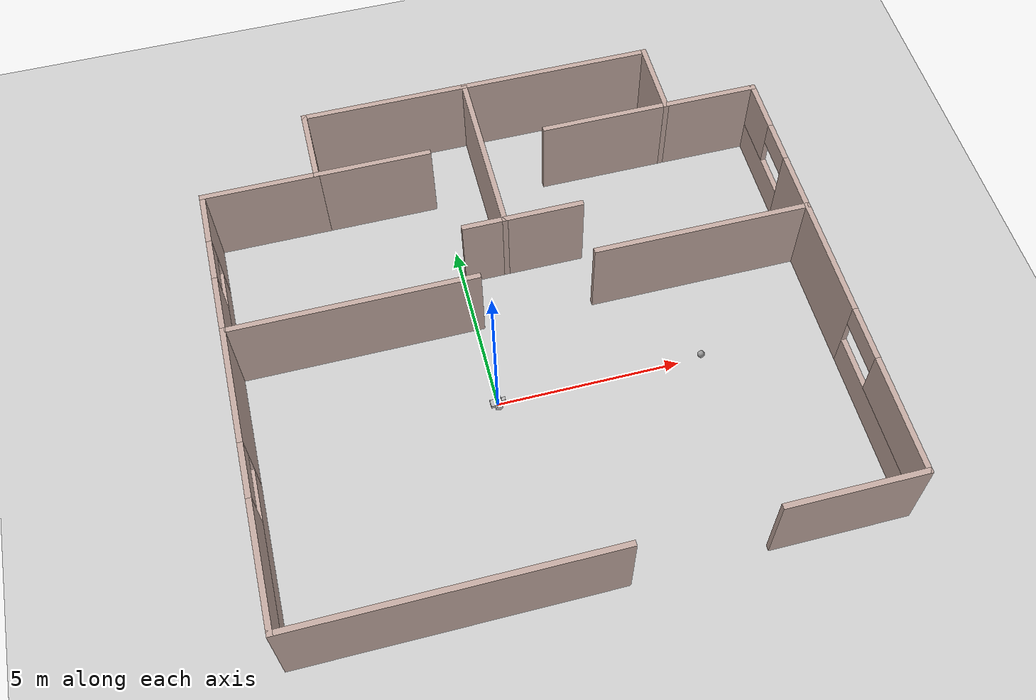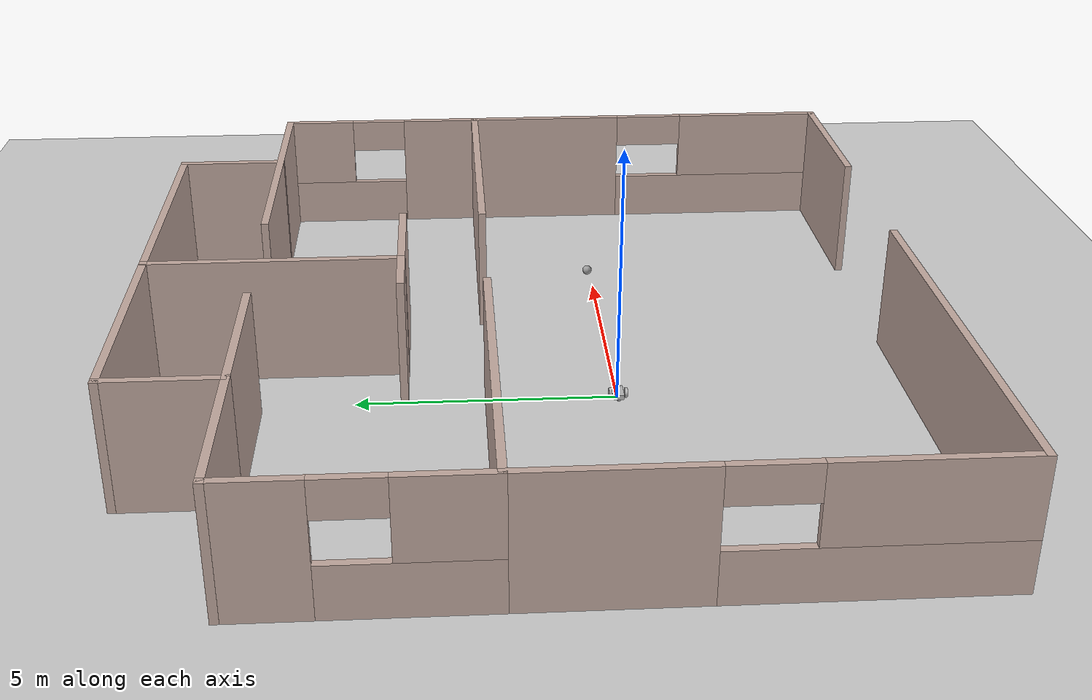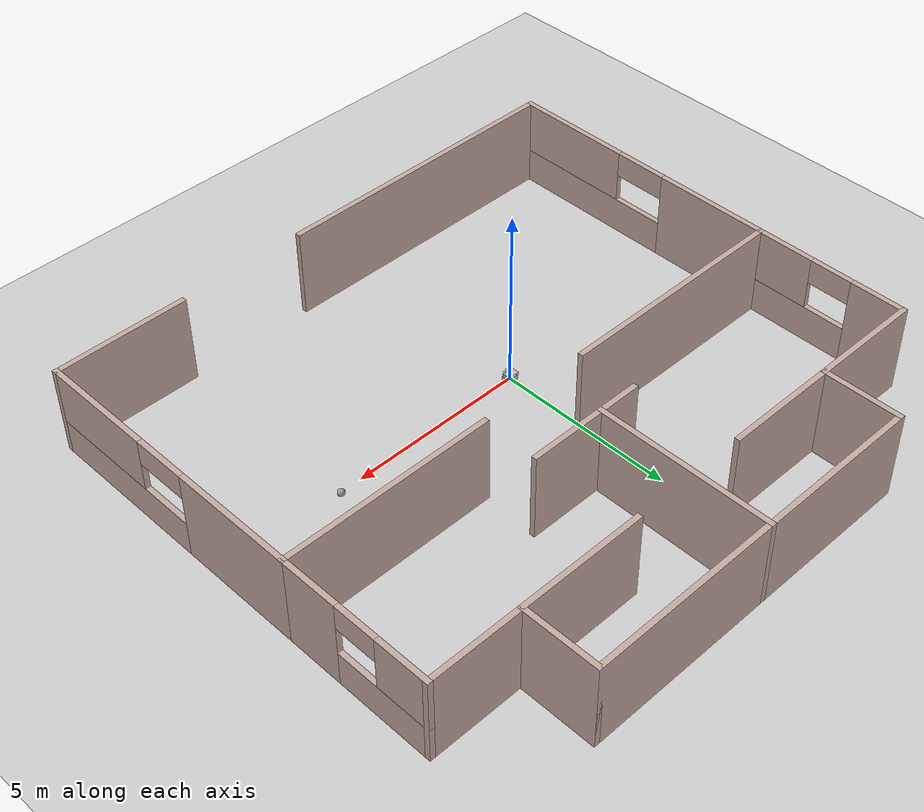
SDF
<sdf version="1.6">
 <world name="default">
  <light name="sun" type="directional">
   <pose>0 0 10 0 -0 0</pose>
   <diffuse>0.8 0.8 0.8 1</diffuse>
   <specular>0.2 0.2 0.2 1</specular>
   <attenuation>
    <range>1000</range>
    <constant>0.9</constant>
    <linear>0.01</linear>
    <quadratic>0.001</quadratic>
   </attenuation>
   <direction>-0.5 0.1 -0.9</direction>
  </light>
  <model name="ground_plane">
   <static>1</static>
   <link name="link">
    <collision name="collision">
     <geometry><plane><normal>0 0 1</normal><size>100 100</size></plane></geometry>
     <surface>
      <contact><collide_bitmask>65535</collide_bitmask></contact>
      <friction><ode><mu>100</mu><mu2>50</mu2></ode></friction>
     </surface>
    </collision>
    <visual name="visual">
     <cast_shadows>0</cast_shadows>
     <geometry><plane><normal>0 0 1</normal><size>100 100</size></plane></geometry>
     <material>
      <script><uri>file://media/materials/scripts/gazebo.material</uri><name>Gazebo/Grey</name></script>
     </material>
    </visual>
   </link>
  </model>
  <gravity>0 0 -9.8</gravity>
  <magnetic_field>6e-06 2.3e-05 -4.2e-05</magnetic_field>
  <atmosphere type="adiabatic"/>
  <physics name="default_physics" default="0" type="ode">
   <max_step_size>0.001</max_step_size>
   <real_time_factor>1</real_time_factor>
   <real_time_update_rate>1000</real_time_update_rate>
  </physics>
  <scene><ambient>0.4 0.4 0.4 1</ambient><background>0.7 0.7 0.7 1</background><shadows>1</shadows></scene>
  <spherical_coordinates>
   <surface_model>EARTH_WGS84</surface_model>
   <latitude_deg>0</latitude_deg>
   <longitude_deg>0</longitude_deg>
   <elevation>0</elevation>
   <heading_deg>0</heading_deg>
  </spherical_coordinates>
  <model name="building">
   <pose>1.35926 1.63717 0 0 -0 0</pose>
   <link name="Wall_22">
    <collision name="Wall_22_Collision">
     <geometry><box><size>5 0.15 2.5</size></box></geometry>
     <pose>0 0 1.25 0 -0 0</pose>
    </collision>
    <visual name="Wall_22_Visual">
     <pose>0 0 1.25 0 -0 0</pose>
     <geometry><box><size>5 0.15 2.5</size></box></geometry>
     <material>
      <script><uri>file://media/materials/scripts/gazebo.material</uri><name>Gazebo/Grey</name></script>
      <ambient>0.760784 0.662745 0.627451 1</ambient>
     </material>
     <meta><layer>0</layer></meta>
    </visual>
    <pose>-0.124998 4.85011 0 0 -0 1.57074</pose>
   </link>
   <link name="Wall_50">
    <collision name="Wall_50_Collision">
     <geometry><box><size>4.75 0.15 2.5</size></box></geometry>
     <pose>0 0 1.25 0 -0 0</pose>
    </collision>
    <visual name="Wall_50_Visual">
     <pose>0 0 1.25 0 -0 0</pose>
     <geometry><box><size>4.75 0.15 2.5</size></box></geometry>
     <material>
      <script><uri>file://media/materials/scripts/gazebo.material</uri><name>Gazebo/Grey</name></script>
      <ambient>0.760784 0.662745 0.627451 1</ambient>
     </material>
     <meta><layer>0</layer></meta>
    </visual>
    <pose>-2.42486 7.27489 0 0 -0 3.14159</pose>
   </link>
   <link name="Wall_51">
    <collision name="Wall_51_Collision">
     <geometry><box><size>2.25 0.15 2.5</size></box></geometry>
     <pose>0 0 1.25 0 -0 0</pose>
    </collision>
    <visual name="Wall_51_Visual">
     <pose>0 0 1.25 0 -0 0</pose>
     <geometry><box><size>2.25 0.15 2.5</size></box></geometry>
     <material>
      <script><uri>file://media/materials/scripts/gazebo.material</uri><name>Gazebo/Grey</name></script>
      <ambient>0.760784 0.662745 0.627451 1</ambient>
     </material>
     <meta><layer>0</layer></meta>
    </visual>
    <pose>-4.72486 6.22489 0 0 0 -1.5708</pose>
   </link>
   <link name="Wall_54">
    <collision name="Wall_54_Collision">
     <geometry><box><size>3.25 0.15 2.5</size></box></geometry>
     <pose>0 0 1.25 0 -0 0</pose>
    </collision>
    <visual name="Wall_54_Visual">
     <pose>0 0 1.25 0 -0 0</pose>
     <geometry><box><size>3.25 0.15 2.5</size></box></geometry>
     <material>
      <script><uri>file://media/materials/scripts/gazebo.material</uri><name>Gazebo/Grey</name></script>
      <ambient>0.760784 0.662745 0.627451 1</ambient>
     </material>
     <meta><layer>0</layer></meta>
    </visual>
    <pose>-6.27486 5.17489 0 0 -0 3.14159</pose>
   </link>
   <link name="Wall_55">
    <pose>-7.82486 2.99989 0 0 0 -1.5708</pose>
    <visual name="Wall_55_Visual_0">
     <pose>-1.4601 0 1.25 0 -0 0</pose>
     <geometry><box><size>1.5798 0.15 2.5</size></box></geometry>
     <material>
      <script><uri>file://media/materials/scripts/gazebo.material</uri><name>Gazebo/Grey</name></script>
      <ambient>0.760784 0.662745 0.627451 1</ambient>
     </material>
     <meta><layer>0</layer></meta>
    </visual>
    <collision name="Wall_55_Collision_0">
     <geometry><box><size>1.5798 0.15 2.5</size></box></geometry>
     <pose>-1.4601 0 1.25 0 -0 0</pose>
    </collision>
    <visual name="Wall_55_Visual_1">
     <pose>0.789898 0 0.5 0 -0 0</pose>
     <geometry><box><size>2.9202 0.15 1</size></box></geometry>
     <material>
      <script><uri>file://media/materials/scripts/gazebo.material</uri><name>Gazebo/Grey</name></script>
      <ambient>0.760784 0.662745 0.627451 1</ambient>
     </material>
     <meta><layer>0</layer></meta>
    </visual>
    <collision name="Wall_55_Collision_1">
     <geometry><box><size>2.9202 0.15 1</size></box></geometry>
     <pose>0.789898 0 0.5 0 -0 0</pose>
    </collision>
    <visual name="Wall_55_Visual_2">
     <pose>1.3899 0 1.75 0 -0 0</pose>
     <geometry><box><size>1.7202 0.15 1.5</size></box></geometry>
     <material>
      <script><uri>file://media/materials/scripts/gazebo.material</uri><name>Gazebo/Grey</name></script>
      <ambient>0.760784 0.662745 0.627451 1</ambient>
     </material>
     <meta><layer>0</layer></meta>
    </visual>
    <collision name="Wall_55_Collision_2">
     <geometry><box><size>1.7202 0.15 1.5</size></box></geometry>
     <pose>1.3899 0 1.75 0 -0 0</pose>
    </collision>
    <visual name="Wall_55_Visual_3">
     <pose>-0.070203 0 2.15 0 -0 0</pose>
     <geometry><box><size>1.2 0.15 0.7</size></box></geometry>
     <material>
      <script><uri>file://media/materials/scripts/gazebo.material</uri><name>Gazebo/Grey</name></script>
      <ambient>0.760784 0.662745 0.627451 1</ambient>
     </material>
     <meta><layer>0</layer></meta>
    </visual>
    <collision name="Wall_55_Collision_3">
     <geometry><box><size>1.2 0.15 0.7</size></box></geometry>
     <pose>-0.070203 0 2.15 0 -0 0</pose>
    </collision>
   </link>
   <link name="Wall_58">
    <collision name="Wall_58_Collision">
     <geometry><box><size>3.25 0.15 2.5</size></box></geometry>
     <pose>0 0 1.25 0 -0 0</pose>
    </collision>
    <visual name="Wall_58_Visual">
     <pose>0 0 1.25 0 -0 0</pose>
     <geometry><box><size>3.25 0.15 2.5</size></box></geometry>
     <material>
      <script><uri>file://media/materials/scripts/gazebo.material</uri><name>Gazebo/Grey</name></script>
      <ambient>0.760784 0.662745 0.627451 1</ambient>
     </material>
     <meta><layer>0</layer></meta>
    </visual>
    <pose>-3.17486 5.17489 0 0 -0 0</pose>
   </link>
   <link name="Wall_61">
    <collision name="Wall_61_Collision">
     <geometry><box><size>1.25 0.15 2.5</size></box></geometry>
     <pose>0 0 1.25 0 -0 0</pose>
    </collision>
    <visual name="Wall_61_Visual">
     <pose>0 0 1.25 0 -0 0</pose>
     <geometry><box><size>1.25 0.15 2.5</size></box></geometry>
     <material>
      <script><uri>file://media/materials/scripts/gazebo.material</uri><name>Gazebo/Grey</name></script>
      <ambient>0.760784 0.662745 0.627451 1</ambient>
     </material>
     <meta><layer>0</layer></meta>
    </visual>
    <pose>-0.675135 2.42533 0 0 -0 3.14159</pose>
   </link>
   <link name="Wall_68">
    <collision name="Wall_68_Collision">
     <geometry><box><size>6.74972 0.15 2.5</size></box></geometry>
     <pose>0 0 1.25 0 -0 0</pose>
    </collision>
    <visual name="Wall_68_Visual">
     <pose>0 0 1.25 0 -0 0</pose>
     <geometry><box><size>6.74972 0.15 2.5</size></box></geometry>
     <material>
      <script><uri>file://media/materials/scripts/gazebo.material</uri><name>Gazebo/Grey</name></script>
      <ambient>0.760784 0.662745 0.627451 1</ambient>
     </material>
     <meta><layer>0</layer></meta>
    </visual>
    <pose>-4.525 0.825108 0 0 -0 6.7e-05</pose>
   </link>
   <link name="Wall_70">
    <collision name="Wall_70_Collision">
     <geometry><box><size>2.25 0.15 2.5</size></box></geometry>
     <pose>0 0 1.25 0 -0 0</pose>
    </collision>
    <visual name="Wall_70_Visual">
     <pose>0 0 1.25 0 -0 0</pose>
     <geometry><box><size>2.25 0.15 2.5</size></box></geometry>
     <material>
      <script><uri>file://media/materials/scripts/gazebo.material</uri><name>Gazebo/Grey</name></script>
      <ambient>0.760784 0.662745 0.627451 1</ambient>
     </material>
     <meta><layer>0</layer></meta>
    </visual>
    <pose>0.924865 2.42533 0 0 -0 0</pose>
   </link>
   <link name="Wall_72">
    <collision name="Wall_72_Collision">
     <geometry><box><size>6 0.15 2.5</size></box></geometry>
     <pose>0 0 1.25 0 -0 0</pose>
    </collision>
    <visual name="Wall_72_Visual">
     <pose>0 0 1.25 0 -0 0</pose>
     <geometry><box><size>6 0.15 2.5</size></box></geometry>
     <material>
      <script><uri>file://media/materials/scripts/gazebo.material</uri><name>Gazebo/Grey</name></script>
      <ambient>0.760784 0.662745 0.627451 1</ambient>
     </material>
     <meta><layer>0</layer></meta>
    </visual>
    <pose>4.89986 0.825328 0 0 -0 0</pose>
   </link>
   <link name="Wall_73">
    <pose>7.82486 3.00033 0 0 -0 1.5708</pose>
    <visual name="Wall_73_Visual_0">
     <pose>-1.37508 0 1.25 0 -0 0</pose>
     <geometry><box><size>1.74984 0.15 2.5</size></box></geometry>
     <material>
      <script><uri>file://media/materials/scripts/gazebo.material</uri><name>Gazebo/Grey</name></script>
      <ambient>0.760784 0.662745 0.627451 1</ambient>
     </material>
     <meta><layer>0</layer></meta>
    </visual>
    <collision name="Wall_73_Collision_0">
     <geometry><box><size>1.74984 0.15 2.5</size></box></geometry>
     <pose>-1.37508 0 1.25 0 -0 0</pose>
    </collision>
    <visual name="Wall_73_Visual_1">
     <pose>0.874919 0 0.5 0 -0 0</pose>
     <geometry><box><size>2.75016 0.15 1</size></box></geometry>
     <material>
      <script><uri>file://media/materials/scripts/gazebo.material</uri><name>Gazebo/Grey</name></script>
      <ambient>0.760784 0.662745 0.627451 1</ambient>
     </material>
     <meta><layer>0</layer></meta>
    </visual>
    <collision name="Wall_73_Collision_1">
     <geometry><box><size>2.75016 0.15 1</size></box></geometry>
     <pose>0.874919 0 0.5 0 -0 0</pose>
    </collision>
    <visual name="Wall_73_Visual_2">
     <pose>1.47492 0 1.75 0 -0 0</pose>
     <geometry><box><size>1.55016 0.15 1.5</size></box></geometry>
     <material>
      <script><uri>file://media/materials/scripts/gazebo.material</uri><name>Gazebo/Grey</name></script>
      <ambient>0.760784 0.662745 0.627451 1</ambient>
     </material>
     <meta><layer>0</layer></meta>
    </visual>
    <collision name="Wall_73_Collision_2">
     <geometry><box><size>1.55016 0.15 1.5</size></box></geometry>
     <pose>1.47492 0 1.75 0 -0 0</pose>
    </collision>
    <visual name="Wall_73_Visual_3">
     <pose>0.099837 0 2.15 0 -0 0</pose>
     <geometry><box><size>1.2 0.15 0.7</size></box></geometry>
     <material>
      <script><uri>file://media/materials/scripts/gazebo.material</uri><name>Gazebo/Grey</name></script>
      <ambient>0.760784 0.662745 0.627451 1</ambient>
     </material>
     <meta><layer>0</layer></meta>
    </visual>
    <collision name="Wall_73_Collision_3">
     <geometry><box><size>1.2 0.15 0.7</size></box></geometry>
     <pose>0.099837 0 2.15 0 -0 0</pose>
    </collision>
   </link>
   <link name="Wall_74">
    <collision name="Wall_74_Collision">
     <geometry><box><size>6.25 0.15 2.5</size></box></geometry>
     <pose>0 0 1.25 0 -0 0</pose>
    </collision>
    <visual name="Wall_74_Visual">
     <pose>0 0 1.25 0 -0 0</pose>
     <geometry><box><size>6.25 0.15 2.5</size></box></geometry>
     <material>
      <script><uri>file://media/materials/scripts/gazebo.material</uri><name>Gazebo/Grey</name></script>
      <ambient>0.760784 0.662745 0.627451 1</ambient>
     </material>
     <meta><layer>0</layer></meta>
    </visual>
    <pose>4.77486 5.17533 0 0 -0 3.14159</pose>
   </link>
   <link name="Wall_78">
    <collision name="Wall_78_Collision">
     <geometry><box><size>5.5 0.15 2.5</size></box></geometry>
     <pose>0 0 1.25 0 -0 0</pose>
    </collision>
    <visual name="Wall_78_Visual">
     <pose>0 0 1.25 0 -0 0</pose>
     <geometry><box><size>5.5 0.15 2.5</size></box></geometry>
     <material>
      <script><uri>file://media/materials/scripts/gazebo.material</uri><name>Gazebo/Grey</name></script>
      <ambient>0.760784 0.662745 0.627451 1</ambient>
     </material>
     <meta><layer>0</layer></meta>
    </visual>
    <pose>2.55014 7.27489 0 0 -0 0</pose>
   </link>
   <link name="Wall_79">
    <collision name="Wall_79_Collision">
     <geometry><box><size>2.25 0.15 2.5</size></box></geometry>
     <pose>0 0 1.25 0 -0 0</pose>
    </collision>
    <visual name="Wall_79_Visual">
     <pose>0 0 1.25 0 -0 0</pose>
     <geometry><box><size>2.25 0.15 2.5</size></box></geometry>
     <material>
      <script><uri>file://media/materials/scripts/gazebo.material</uri><name>Gazebo/Grey</name></script>
      <ambient>0.760784 0.662745 0.627451 1</ambient>
     </material>
     <meta><layer>0</layer></meta>
    </visual>
    <pose>5.22514 6.22489 0 0 0 -1.5708</pose>
   </link>
   <link name="Wall_81">
    <pose>-7.82486 -3.22511 0 0 0 -1.5708</pose>
    <visual name="Wall_81_Visual_0">
     <pose>-2.46275 0 1.25 0 -0 0</pose>
     <geometry><box><size>3.32451 0.15 2.5</size></box></geometry>
     <material>
      <script><uri>file://media/materials/scripts/gazebo.material</uri><name>Gazebo/Grey</name></script>
      <ambient>0.760784 0.662745 0.627451 1</ambient>
     </material>
     <meta><layer>0</layer></meta>
    </visual>
    <collision name="Wall_81_Collision_0">
     <geometry><box><size>3.32451 0.15 2.5</size></box></geometry>
     <pose>-2.46275 0 1.25 0 -0 0</pose>
    </collision>
    <visual name="Wall_81_Visual_1">
     <pose>1.66225 0 0.5 0 -0 0</pose>
     <geometry><box><size>4.92549 0.15 1</size></box></geometry>
     <material>
      <script><uri>file://media/materials/scripts/gazebo.material</uri><name>Gazebo/Grey</name></script>
      <ambient>0.760784 0.662745 0.627451 1</ambient>
     </material>
     <meta><layer>0</layer></meta>
    </visual>
    <collision name="Wall_81_Collision_1">
     <geometry><box><size>4.92549 0.15 1</size></box></geometry>
     <pose>1.66225 0 0.5 0 -0 0</pose>
    </collision>
    <visual name="Wall_81_Visual_2">
     <pose>2.41225 0 1.75 0 -0 0</pose>
     <geometry><box><size>3.42549 0.15 1.5</size></box></geometry>
     <material>
      <script><uri>file://media/materials/scripts/gazebo.material</uri><name>Gazebo/Grey</name></script>
      <ambient>0.760784 0.662745 0.627451 1</ambient>
     </material>
     <meta><layer>0</layer></meta>
    </visual>
    <collision name="Wall_81_Collision_2">
     <geometry><box><size>3.42549 0.15 1.5</size></box></geometry>
     <pose>2.41225 0 1.75 0 -0 0</pose>
    </collision>
    <visual name="Wall_81_Visual_3">
     <pose>-0.050491 0 2.15 0 -0 0</pose>
     <geometry><box><size>1.5 0.15 0.7</size></box></geometry>
     <material>
      <script><uri>file://media/materials/scripts/gazebo.material</uri><name>Gazebo/Grey</name></script>
      <ambient>0.760784 0.662745 0.627451 1</ambient>
     </material>
     <meta><layer>0</layer></meta>
    </visual>
    <collision name="Wall_81_Collision_3">
     <geometry><box><size>1.5 0.15 0.7</size></box></geometry>
     <pose>-0.050491 0 2.15 0 -0 0</pose>
    </collision>
   </link>
   <link name="Wall_82">
    <collision name="Wall_82_Collision">
     <geometry><box><size>8.5 0.15 2.5</size></box></geometry>
     <pose>0 0 1.25 0 -0 0</pose>
    </collision>
    <visual name="Wall_82_Visual">
     <pose>0 0 1.25 0 -0 0</pose>
     <geometry><box><size>8.5 0.15 2.5</size></box></geometry>
     <material>
      <script><uri>file://media/materials/scripts/gazebo.material</uri><name>Gazebo/Grey</name></script>
      <ambient>0.760784 0.662745 0.627451 1</ambient>
     </material>
     <meta><layer>0</layer></meta>
    </visual>
    <pose>-3.64986 -7.27511 0 0 -0 0</pose>
   </link>
   <link name="Wall_84">
    <pose>7.82486 -3.22467 0 0 0 -1.5708</pose>
    <visual name="Wall_84_Visual_0">
     <pose>-2.3819 0 1.25 0 -0 0</pose>
     <geometry><box><size>3.4862 0.15 2.5</size></box></geometry>
     <material>
      <script><uri>file://media/materials/scripts/gazebo.material</uri><name>Gazebo/Grey</name></script>
      <ambient>0.760784 0.662745 0.627451 1</ambient>
     </material>
     <meta><layer>0</layer></meta>
    </visual>
    <collision name="Wall_84_Collision_0">
     <geometry><box><size>3.4862 0.15 2.5</size></box></geometry>
     <pose>-2.3819 0 1.25 0 -0 0</pose>
    </collision>
    <visual name="Wall_84_Visual_1">
     <pose>1.7431 0 0.5 0 -0 0</pose>
     <geometry><box><size>4.7638 0.15 1</size></box></geometry>
     <material>
      <script><uri>file://media/materials/scripts/gazebo.material</uri><name>Gazebo/Grey</name></script>
      <ambient>0.760784 0.662745 0.627451 1</ambient>
     </material>
     <meta><layer>0</layer></meta>
    </visual>
    <collision name="Wall_84_Collision_1">
     <geometry><box><size>4.7638 0.15 1</size></box></geometry>
     <pose>1.7431 0 0.5 0 -0 0</pose>
    </collision>
    <visual name="Wall_84_Visual_2">
     <pose>2.4931 0 1.75 0 -0 0</pose>
     <geometry><box><size>3.2638 0.15 1.5</size></box></geometry>
     <material>
      <script><uri>file://media/materials/scripts/gazebo.material</uri><name>Gazebo/Grey</name></script>
      <ambient>0.760784 0.662745 0.627451 1</ambient>
     </material>
     <meta><layer>0</layer></meta>
    </visual>
    <collision name="Wall_84_Collision_2">
     <geometry><box><size>3.2638 0.15 1.5</size></box></geometry>
     <pose>2.4931 0 1.75 0 -0 0</pose>
    </collision>
    <visual name="Wall_84_Visual_3">
     <pose>0.111205 0 2.15 0 -0 0</pose>
     <geometry><box><size>1.5 0.15 0.7</size></box></geometry>
     <material>
      <script><uri>file://media/materials/scripts/gazebo.material</uri><name>Gazebo/Grey</name></script>
      <ambient>0.760784 0.662745 0.627451 1</ambient>
     </material>
     <meta><layer>0</layer></meta>
    </visual>
    <collision name="Wall_84_Collision_3">
     <geometry><box><size>1.5 0.15 0.7</size></box></geometry>
     <pose>0.111205 0 2.15 0 -0 0</pose>
    </collision>
   </link>
   <link name="Wall_85">
    <collision name="Wall_85_Collision">
     <geometry><box><size>3.75 0.15 2.5</size></box></geometry>
     <pose>0 0 1.25 0 -0 0</pose>
    </collision>
    <visual name="Wall_85_Visual">
     <pose>0 0 1.25 0 -0 0</pose>
     <geometry><box><size>3.75 0.15 2.5</size></box></geometry>
     <material>
      <script><uri>file://media/materials/scripts/gazebo.material</uri><name>Gazebo/Grey</name></script>
      <ambient>0.760784 0.662745 0.627451 1</ambient>
     </material>
     <meta><layer>0</layer></meta>
    </visual>
    <pose>6.02486 -7.27467 0 0 -0 3.14159</pose>
   </link>
   <static>1</static>
  </model>
  <model name="my_robot">
   <link name="robot_footprint">
    <inertial>
     <pose>0.001325 0 0 0 -0 0</pose>
     <mass>15.1</mass>
     <inertia>
      <ixx>0.100002</ixx>
      <ixy>0</ixy>
      <ixz>-1.48675e-07</ixz>
      <iyy>0.103976</iyy>
      <iyz>0</iyz>
      <izz>0.103976</izz>
     </inertia>
    </inertial>
    <collision name="robot_footprint_fixed_joint_lump__collision_collision">
     <geometry><box><size>0.4 0.2 0.1</size></box></geometry>
    </collision>
    <collision name="robot_footprint_fixed_joint_lump__back_caster_collision_collision_1">
     <pose>-0.15 0 -0.05 0 -0 0</pose>
     <geometry><sphere><radius>0.0499</radius></sphere></geometry>
    </collision>
    <collision name="robot_footprint_fixed_joint_lump__front_caster_collision_collision_2">
     <pose>0.15 0 -0.05 0 -0 0</pose>
     <geometry><sphere><radius>0.0499</radius></sphere></geometry>
    </collision>
    <collision name="robot_footprint_fixed_joint_lump__camera_collision_collision_3">
     <pose>0.2 0 0 0 -0 0</pose>
     <geometry><box><size>0.05 0.05 0.05</size></box></geometry>
    </collision>
    <collision name="robot_footprint_fixed_joint_lump__hokuyo_collision_collision_4">
     <pose>0.15 0 0.1 0 -0 0</pose>
     <geometry><box><size>0.1 0.1 0.1</size></box></geometry>
    </collision>
    <visual name="robot_footprint_fixed_joint_lump__chassis_visual_visual">
     <geometry><box><size>0.4 0.2 0.1</size></box></geometry>
    </visual>
    <visual name="robot_footprint_fixed_joint_lump__back_caster_visual_visual_1">
     <pose>-0.15 0 -0.05 0 -0 0</pose>
     <geometry><sphere><radius>0.05</radius></sphere></geometry>
    </visual>
    <visual name="robot_footprint_fixed_joint_lump__front_caster_visual_visual_2">
     <pose>0.15 0 -0.05 0 -0 0</pose>
     <geometry><sphere><radius>0.05</radius></sphere></geometry>
    </visual>
    <visual name="robot_footprint_fixed_joint_lump__camera_visual_visual_3">
     <pose>0.2 0 0 0 -0 0</pose>
     <geometry><box><size>0.05 0.05 0.05</size></box></geometry>
     <material><script><uri>__default__</uri><name>__default__</name></script></material>
    </visual>
    <visual name="robot_footprint_fixed_joint_lump__hokuyo_visual_visual_4">
     <pose>0.15 0 0.1 0 -0 0</pose>
     <geometry><box><size>0.1 0.1 0.1</size></box></geometry>
     <material><script><uri>__default__</uri><name>__default__</name></script></material>
    </visual>
    <sensor name="camera1" type="camera">
     <update_rate>30</update_rate>
     <camera name="head">
      <horizontal_fov>1.39626</horizontal_fov>
      <image><width>800</width><height>800</height><format>R8G8B8</format></image>
      <clip><near>0.02</near><far>300</far></clip>
     </camera>
     <plugin name="camera_controller" filename="libgazebo_ros_camera.so">
      <alwaysOn>true</alwaysOn>
      <updateRate>0.0</updateRate>
      <cameraName>camera</cameraName>
      <imageTopicName>rgb/image_raw</imageTopicName>
      <cameraInfoTopicName>rgb/camera_info</cameraInfoTopicName>
      <frameName>camera</frameName>
      <hackBaseline>0.07</hackBaseline>
      <distortionK1>0.0</distortionK1>
      <distortionK2>0.0</distortionK2>
      <distortionK3>0.0</distortionK3>
      <distortionT1>0.0</distortionT1>
      <distortionT2>0.0</distortionT2>
      <robotNamespace>/</robotNamespace>
     </plugin>
     <pose>0.2 0 0 0 -0 0</pose>
    </sensor>
    <sensor name="head_hokuyo_sensor" type="ray">
     <visualize>0</visualize>
     <update_rate>40</update_rate>
     <ray>
      <scan>
       <horizontal>
        <samples>720</samples>
        <resolution>1</resolution>
        <min_angle>-1.5708</min_angle>
        <max_angle>1.5708</max_angle>
       </horizontal>
       <vertical><samples>1</samples><min_angle>0</min_angle><max_angle>0</max_angle></vertical>
      </scan>
      <range><min>0.1</min><max>30</max><resolution>0.01</resolution></range>
      <noise><type>gaussian</type><mean>0</mean><stddev>0.01</stddev></noise>
     </ray>
     <plugin name="gazebo_ros_head_hokuyo_controller" filename="libgazebo_ros_laser.so">
      <topicName>/scan</topicName>
      <frameName>hokuyo</frameName>
      <robotNamespace>/</robotNamespace>
     </plugin>
     <pose>0.15 0 0.1 0 -0 0</pose>
    </sensor>
   </link>
   <link name="left_wheel">
    <pose>0 0.15 0 0 -0 0</pose>
    <inertial>
     <pose>0 0 0 -0 1.5707 1.5707</pose>
     <mass>5</mass>
     <inertia><ixx>0.1</ixx><ixy>0</ixy><ixz>0</ixz><iyy>0.1</iyy><iyz>0</iyz><izz>0.1</izz></inertia>
    </inertial>
    <collision name="left_wheel_collision_collision">
     <pose>0 0 0 3.14159 1.57079 -1.57089</pose>
     <geometry><cylinder><length>0.05</length><radius>0.1</radius></cylinder></geometry>
    </collision>
    <visual name="left_wheel_visual_visual">
     <pose>0 0 0 3.14159 1.57079 -1.57089</pose>
     <geometry><cylinder><length>0.05</length><radius>0.1</radius></cylinder></geometry>
    </visual>
   </link>
   <joint name="left_wheel_hinge" type="revolute">
    <child>left_wheel</child>
    <parent>robot_footprint</parent>
    <axis>
     <xyz>0 1 0</xyz>
     <limit><lower>-1e+16</lower><upper>1e+16</upper></limit>
     <dynamics>
      <damping>1</damping>
      <friction>1</friction>
      <spring_reference>0</spring_reference>
      <spring_stiffness>0</spring_stiffness>
     </dynamics>
     <use_parent_model_frame>1</use_parent_model_frame>
    </axis>
   </joint>
   <link name="right_wheel">
    <pose>0 -0.15 0 0 -0 0</pose>
    <inertial>
     <pose>0 0 0 -0 1.5707 1.5707</pose>
     <mass>5</mass>
     <inertia><ixx>0.1</ixx><ixy>0</ixy><ixz>0</ixz><iyy>0.1</iyy><iyz>0</iyz><izz>0.1</izz></inertia>
    </inertial>
    <collision name="right_wheel_collision_collision">
     <pose>0 0 0 3.14159 1.57079 -1.57089</pose>
     <geometry><cylinder><length>0.05</length><radius>0.1</radius></cylinder></geometry>
    </collision>
    <visual name="right_wheel_visual_visual">
     <pose>0 0 0 3.14159 1.57079 -1.57089</pose>
     <geometry><cylinder><length>0.05</length><radius>0.1</radius></cylinder></geometry>
    </visual>
   </link>
   <joint name="right_wheel_hinge" type="revolute">
    <child>right_wheel</child>
    <parent>robot_footprint</parent>
    <axis>
     <xyz>0 1 0</xyz>
     <limit><lower>-1e+16</lower><upper>1e+16</upper></limit>
     <dynamics>
      <damping>1</damping>
      <friction>1</friction>
      <spring_reference>0</spring_reference>
      <spring_stiffness>0</spring_stiffness>
     </dynamics>
     <use_parent_model_frame>1</use_parent_model_frame>
    </axis>
   </joint>
   <static>0</static>
   <plugin name="differential_drive_controller" filename="libgazebo_ros_diff_drive.so">
    <legacyMode>false</legacyMode>
    <alwaysOn>true</alwaysOn>
    <updateRate>10</updateRate>
    <leftJoint>left_wheel_hinge</leftJoint>
    <rightJoint>right_wheel_hinge</rightJoint>
    <wheelSeparation>0.4</wheelSeparation>
    <wheelDiameter>0.2</wheelDiameter>
    <torque>10</torque>
    <commandTopic>cmd_vel</commandTopic>
    <odometryTopic>odom</odometryTopic>
    <odometryFrame>odom</odometryFrame>
    <robotBaseFrame>robot_footprint</robotBaseFrame>
    <publishWheelTF>false</publishWheelTF>
    <publishWheelJointState>false</publishWheelJointState>
    <rosDebugLevel>na</rosDebugLevel>
    <wheelAcceleration>0</wheelAcceleration>
    <wheelTorque>5</wheelTorque>
    <odometrySource>world</odometrySource>
    <publishTf>1</publishTf>
    <publishOdomTF>true</publishOdomTF>
    <robotNamespace>/</robotNamespace>
   </plugin>
   <pose>-0.000102 -0.005706 0.099995 -7e-06 -0.00065 0.001634</pose>
  </model>
  <model name="my_ball">
   <link name="link_0">
    <inertial>
     <mass>1</mass>
     <inertia><ixx>0.1</ixx><ixy>0</ixy><ixz>0</ixz><iyy>0.1</iyy><iyz>0</iyz><izz>0.1</izz></inertia>
    </inertial>
    <visual name="visual">
     <geometry><sphere><radius>0.1</radius></sphere></geometry>
     <material>
      <lighting>1</lighting>
      <script><uri>file://media/materials/scripts/gazebo.material</uri><name>Gazebo/Grey</name></script>
      <shader type="pixel"><normal_map>__default__</normal_map></shader>
      <ambient>1 1 1 1</ambient>
      <diffuse>1 1 1 1</diffuse>
      <specular>1 1 1 1</specular>
      <emissive>1 1 1 1</emissive>
     </material>
    </visual>
    <collision name="collision">
     <geometry><sphere><radius>0.1</radius></sphere></geometry>
     <surface>
      <friction>
       <ode><mu>1</mu><mu2>1</mu2><fdir1>0 0 0</fdir1><slip1>0</slip1><slip2>0</slip2></ode>
       <torsional>
        <coefficient>1</coefficient>
        <patch_radius>0</patch_radius>
        <surface_radius>0</surface_radius>
        <use_patch_radius>1</use_patch_radius>
        <ode><slip>0</slip></ode>
       </torsional>
      </friction>
      <bounce><restitution_coefficient>0</restitution_coefficient><threshold>1e+06</threshold></bounce>
      <contact>
       <collide_without_contact>0</collide_without_contact>
       <collide_without_contact_bitmask>1</collide_without_contact_bitmask>
       <collide_bitmask>1</collide_bitmask>
       <ode>
        <soft_cfm>0</soft_cfm>
        <soft_erp>0.2</soft_erp>
        <kp>1e+13</kp>
        <kd>1</kd>
        <max_vel>0.01</max_vel>
        <min_depth>0</min_depth>
       </ode>
       <bullet>
        <split_impulse>1</split_impulse>
        <split_impulse_penetration_threshold>-0.01</split_impulse_penetration_threshold>
        <soft_cfm>0</soft_cfm>
        <soft_erp>0.2</soft_erp>
        <kp>1e+13</kp>
        <kd>1</kd>
       </bullet>
      </contact>
     </surface>
    </collision>
   </link>
   <static>0</static>
   <pose>5.65814 0.058066 0.1 0 -0 0</pose>
  </model>
 </world>
</sdf>
